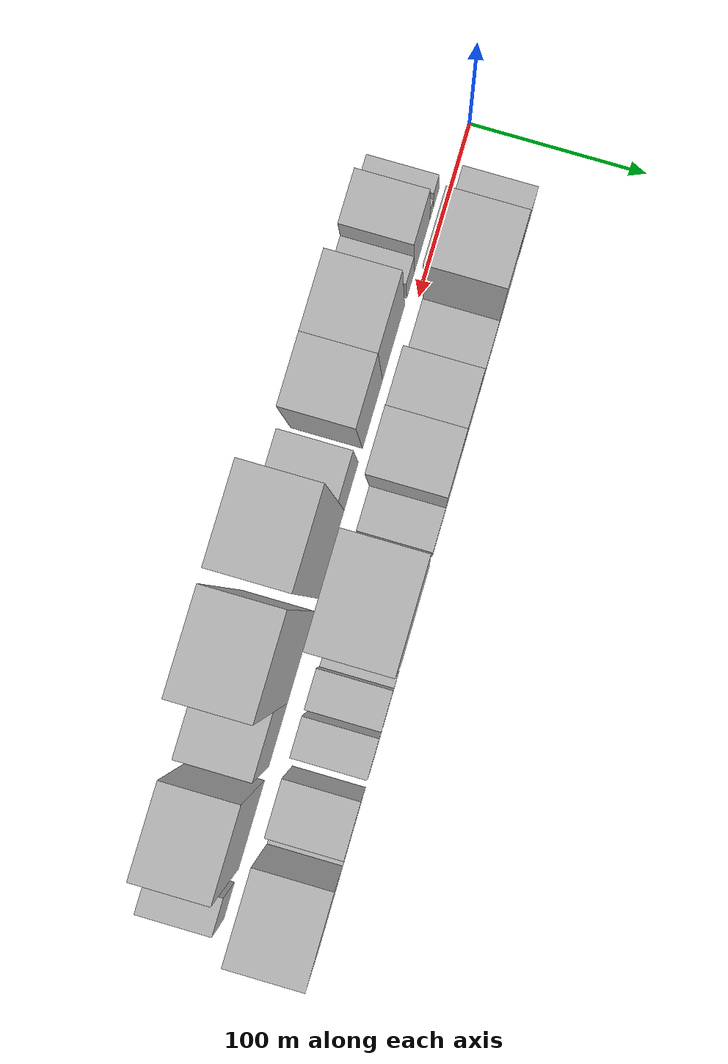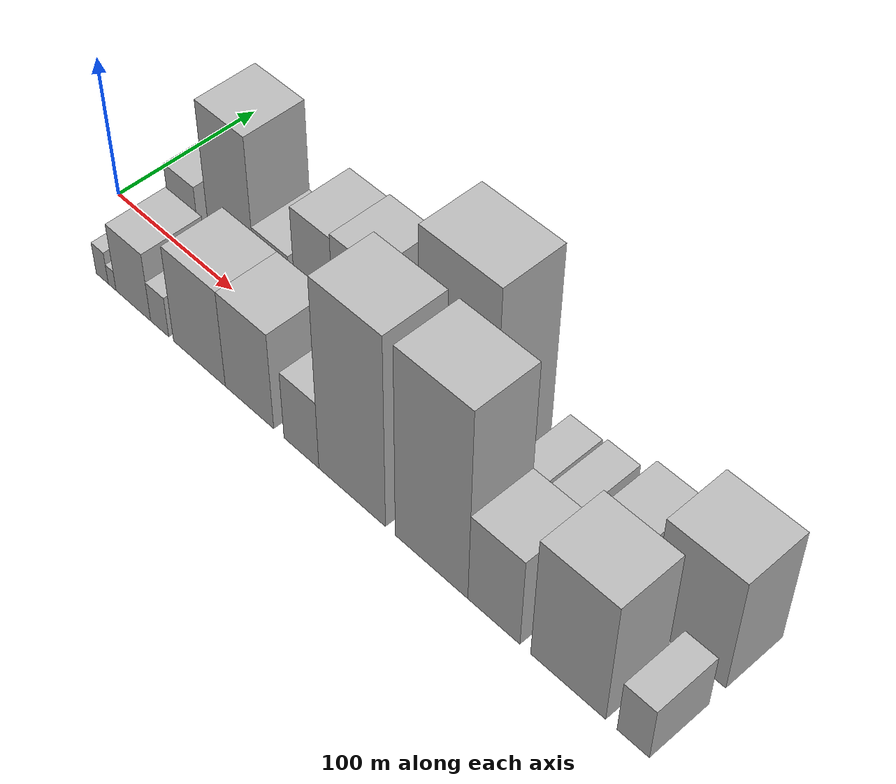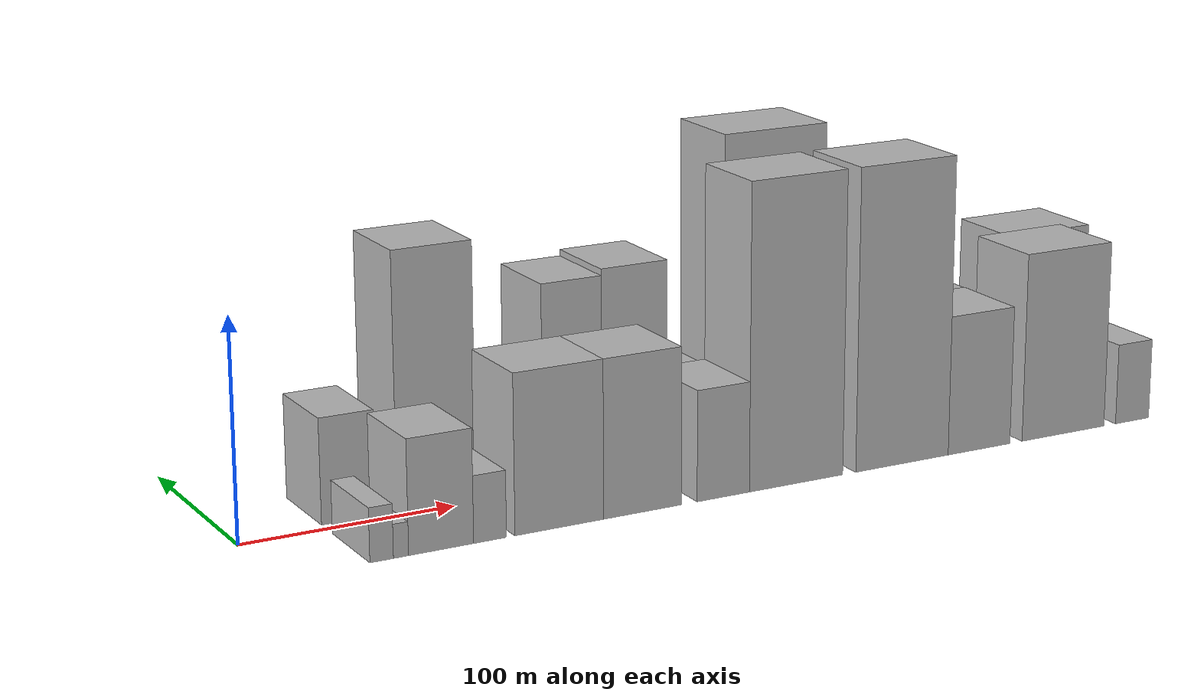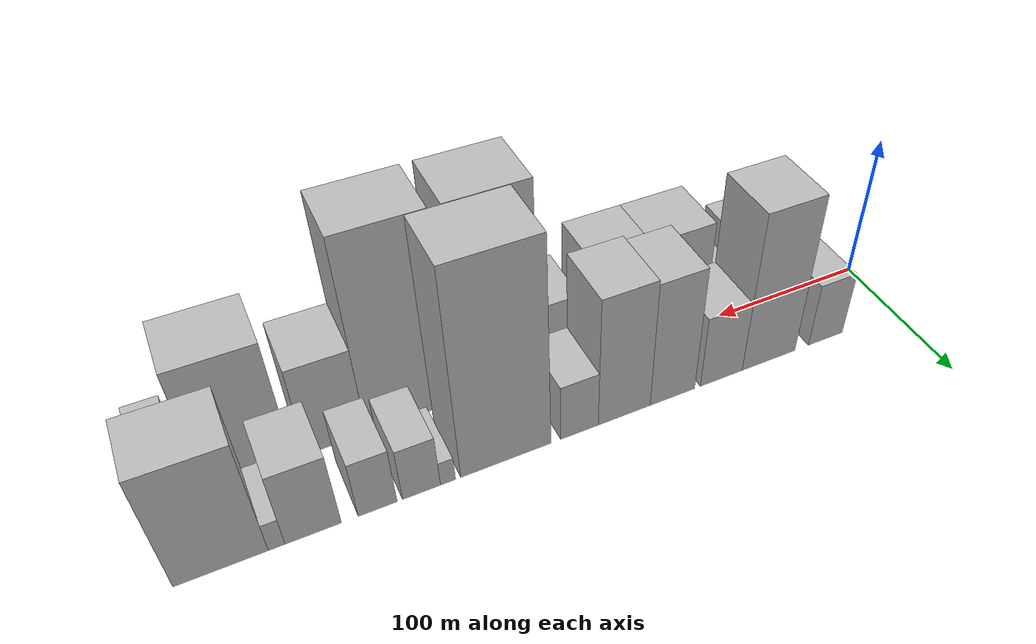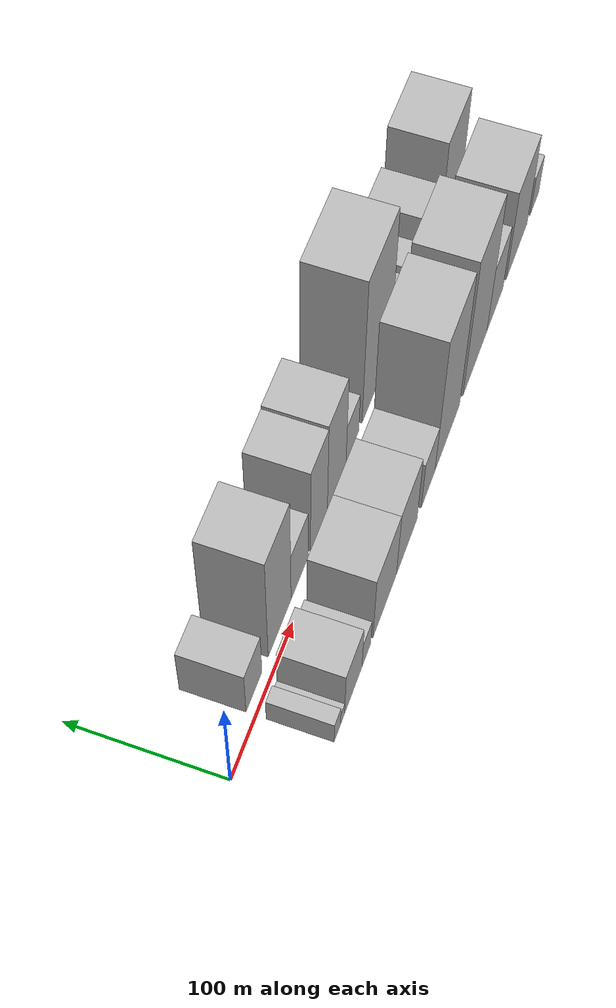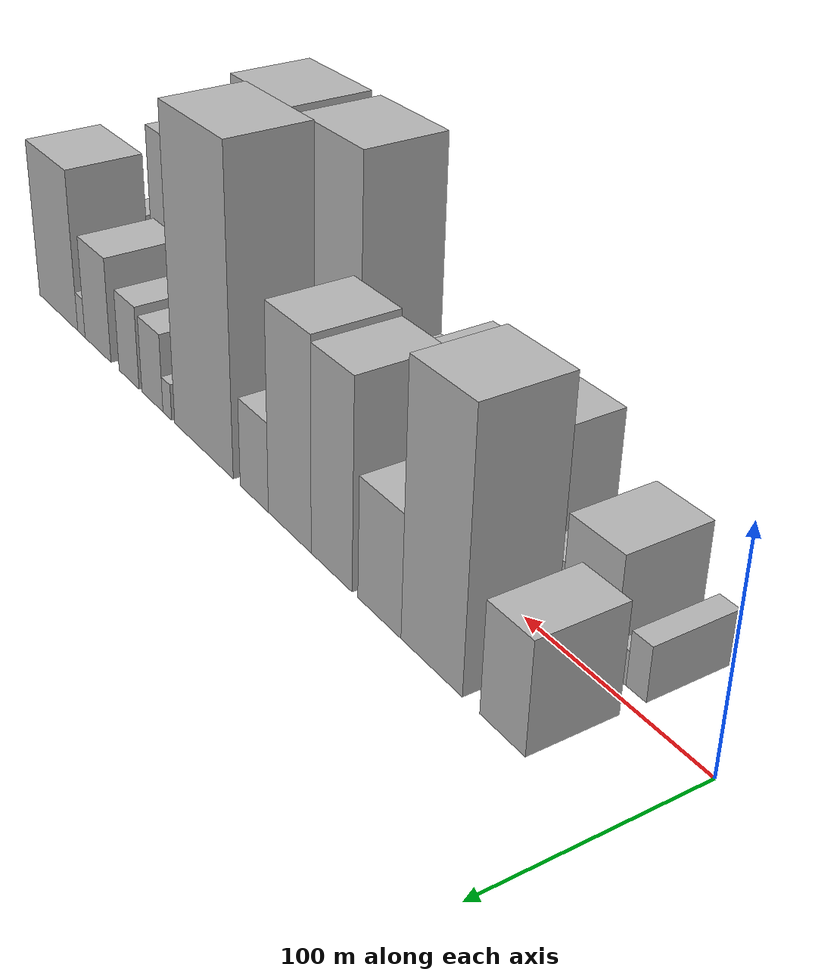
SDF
<sdf version="1.6">
 <world name="default">
  <scene>
   <sky><clouds><speed>12</speed></clouds></sky>
   <ambient>0.4 0.4 0.4 1</ambient>
   <background>0.7 0.7 0.7 1</background>
   <shadows>1</shadows>
  </scene>
  <gravity>0 0 -9.8066</gravity>
  <magnetic_field>6e-06 2.3e-05 -4.2e-05</magnetic_field>
  <physics default="0" name="default_physics" type="ode">
   <ode>
    <solver>
     <type>quick</type>
     <iters>10</iters>
     <sor>1.0</sor>
     <use_dynamic_moi_rescaling>0</use_dynamic_moi_rescaling>
    </solver>
    <constraints>
     <cfm>0</cfm>
     <erp>0.2</erp>
     <contact_max_correcting_vel>100</contact_max_correcting_vel>
     <contact_surface_layer>0.001</contact_surface_layer>
    </constraints>
   </ode>
   <max_step_size>0.004</max_step_size>
   <real_time_factor>1</real_time_factor>
   <real_time_update_rate>250</real_time_update_rate>
  </physics>
  <light name="sun" type="directional">
   <pose>0 0 10 0 0 0</pose>
   <diffuse>0.8 0.8 0.8 1</diffuse>
   <specular>0.2 0.2 0.2 1</specular>
   <attenuation>
    <range>1000</range>
    <constant>0.9</constant>
    <linear>0.01</linear>
    <quadratic>0.001</quadratic>
   </attenuation>
   <direction>-0.5 0.1 -0.9</direction>
  </light>
  <model name="building_1">
   <static>1</static>
   <pose>52.6195 26.0000 0 0.000000 0.000000 1.570796</pose>
   <link name="link">
    <pose>0 0 24.00 0 0 0</pose>
    <collision name="collision"><geometry><box><size>40.0000 25.2391 48.0000</size></box></geometry></collision>
    <visual name="visual">
     <cast_shadows>0</cast_shadows>
     <geometry><box><size>40.0000 25.2391 48.0000</size></box></geometry>
     <material>
      <script>
       <uri>model://HANNAS_wall/materials/scripts</uri>
       <uri>model://HANNAS_wall/materials/textures</uri>
       <name>vrc/HANNAS_wall</name>
      </script>
     </material>
    </visual>
   </link>
  </model>
  <model name="building_2">
   <static>1</static>
   <pose>94.1883 26.0000 0 0.000000 0.000000 1.570796</pose>
   <link name="link">
    <pose>0 0 58.50 0 0 0</pose>
    <collision name="collision"><geometry><box><size>40.0000 37.8985 117.0000</size></box></geometry></collision>
    <visual name="visual">
     <cast_shadows>0</cast_shadows>
     <geometry><box><size>40.0000 37.8985 117.0000</size></box></geometry>
     <material>
      <script>
       <uri>model://HANNAS_wall/materials/scripts</uri>
       <uri>model://HANNAS_wall/materials/textures</uri>
       <name>vrc/HANNAS_wall</name>
      </script>
     </material>
    </visual>
   </link>
  </model>
  <model name="building_3">
   <static>1</static>
   <pose>127.6139 26.0000 0 0.000000 0.000000 1.570796</pose>
   <link name="link">
    <pose>0 0 27.00 0 0 0</pose>
    <collision name="collision"><geometry><box><size>40.0000 28.9527 54.0000</size></box></geometry></collision>
    <visual name="visual">
     <cast_shadows>0</cast_shadows>
     <geometry><box><size>40.0000 28.9527 54.0000</size></box></geometry>
     <material>
      <script>
       <uri>model://HANNAS_wall/materials/scripts</uri>
       <uri>model://HANNAS_wall/materials/textures</uri>
       <name>vrc/HANNAS_wall</name>
      </script>
     </material>
    </visual>
   </link>
  </model>
  <model name="building_4">
   <static>1</static>
   <pose>160.9528 26.0000 0 0.000000 0.000000 1.570796</pose>
   <link name="link">
    <pose>0 0 46.50 0 0 0</pose>
    <collision name="collision"><geometry><box><size>40.0000 29.7250 93.0000</size></box></geometry></collision>
    <visual name="visual">
     <cast_shadows>0</cast_shadows>
     <geometry><box><size>40.0000 29.7250 93.0000</size></box></geometry>
     <material>
      <script>
       <uri>model://HANNAS_wall/materials/scripts</uri>
       <uri>model://HANNAS_wall/materials/textures</uri>
       <name>vrc/HANNAS_wall</name>
      </script>
     </material>
    </visual>
   </link>
  </model>
  <model name="building_5">
   <static>1</static>
   <pose>192.5927 26.0000 0 0.000000 0.000000 1.570796</pose>
   <link name="link">
    <pose>0 0 48.00 0 0 0</pose>
    <collision name="collision"><geometry><box><size>40.0000 33.5550 96.0000</size></box></geometry></collision>
    <visual name="visual">
     <cast_shadows>0</cast_shadows>
     <geometry><box><size>40.0000 33.5550 96.0000</size></box></geometry>
     <material>
      <script>
       <uri>model://HANNAS_wall/materials/scripts</uri>
       <uri>model://HANNAS_wall/materials/textures</uri>
       <name>vrc/HANNAS_wall</name>
      </script>
     </material>
    </visual>
   </link>
  </model>
  <model name="building_6">
   <static>1</static>
   <pose>221.1236 26.0000 0 0.000000 0.000000 1.570796</pose>
   <link name="link">
    <pose>0 0 21.00 0 0 0</pose>
    <collision name="collision"><geometry><box><size>40.0000 23.5068 42.0000</size></box></geometry></collision>
    <visual name="visual">
     <cast_shadows>0</cast_shadows>
     <geometry><box><size>40.0000 23.5068 42.0000</size></box></geometry>
     <material>
      <script>
       <uri>model://HANNAS_wall/materials/scripts</uri>
       <uri>model://HANNAS_wall/materials/textures</uri>
       <name>vrc/HANNAS_wall</name>
      </script>
     </material>
    </visual>
   </link>
  </model>
  <model name="building_7">
   <static>1</static>
   <pose>265.7834 26.0000 0 0.000000 0.000000 1.570796</pose>
   <link name="link">
    <pose>0 0 75.00 0 0 0</pose>
    <collision name="collision"><geometry><box><size>40.0000 53.8128 150.0000</size></box></geometry></collision>
    <visual name="visual">
     <cast_shadows>0</cast_shadows>
     <geometry><box><size>40.0000 53.8128 150.0000</size></box></geometry>
     <material>
      <script>
       <uri>model://HANNAS_wall/materials/scripts</uri>
       <uri>model://HANNAS_wall/materials/textures</uri>
       <name>vrc/HANNAS_wall</name>
      </script>
     </material>
    </visual>
   </link>
  </model>
  <model name="building_8">
   <static>1</static>
   <pose>299.9729 26.0000 0 0.000000 0.000000 1.570796</pose>
   <link name="link">
    <pose>0 0 9.00 0 0 0</pose>
    <collision name="collision"><geometry><box><size>40.0000 8.5662 18.0000</size></box></geometry></collision>
    <visual name="visual">
     <cast_shadows>0</cast_shadows>
     <geometry><box><size>40.0000 8.5662 18.0000</size></box></geometry>
     <material>
      <script>
       <uri>model://HANNAS_wall/materials/scripts</uri>
       <uri>model://HANNAS_wall/materials/textures</uri>
       <name>vrc/HANNAS_wall</name>
      </script>
     </material>
    </visual>
   </link>
  </model>
  <model name="building_9">
   <static>1</static>
   <pose>314.9580 26.0000 0 0.000000 0.000000 1.570796</pose>
   <link name="link">
    <pose>0 0 19.50 0 0 0</pose>
    <collision name="collision"><geometry><box><size>40.0000 21.4040 39.0000</size></box></geometry></collision>
    <visual name="visual">
     <cast_shadows>0</cast_shadows>
     <geometry><box><size>40.0000 21.4040 39.0000</size></box></geometry>
     <material>
      <script>
       <uri>model://HANNAS_wall/materials/scripts</uri>
       <uri>model://HANNAS_wall/materials/textures</uri>
       <name>vrc/HANNAS_wall</name>
      </script>
     </material>
    </visual>
   </link>
  </model>
  <model name="building_10">
   <static>1</static>
   <pose>339.3131 26.0000 0 0.000000 0.000000 1.570796</pose>
   <link name="link">
    <pose>0 0 21.00 0 0 0</pose>
    <collision name="collision"><geometry><box><size>40.0000 21.3061 42.0000</size></box></geometry></collision>
    <visual name="visual">
     <cast_shadows>0</cast_shadows>
     <geometry><box><size>40.0000 21.3061 42.0000</size></box></geometry>
     <material>
      <script>
       <uri>model://HANNAS_wall/materials/scripts</uri>
       <uri>model://HANNAS_wall/materials/textures</uri>
       <name>vrc/HANNAS_wall</name>
      </script>
     </material>
    </visual>
   </link>
  </model>
  <model name="building_11">
   <static>1</static>
   <pose>373.7644 26.0000 0 0.000000 0.000000 1.570796</pose>
   <link name="link">
    <pose>0 0 27.00 0 0 0</pose>
    <collision name="collision"><geometry><box><size>40.0000 29.5966 54.0000</size></box></geometry></collision>
    <visual name="visual">
     <cast_shadows>0</cast_shadows>
     <geometry><box><size>40.0000 29.5966 54.0000</size></box></geometry>
     <material>
      <script>
       <uri>model://HANNAS_wall/materials/scripts</uri>
       <uri>model://HANNAS_wall/materials/textures</uri>
       <name>vrc/HANNAS_wall</name>
      </script>
     </material>
    </visual>
   </link>
  </model>
  <model name="building_12">
   <static>1</static>
   <pose>392.8531 26.0000 0 0.000000 0.000000 1.570796</pose>
   <link name="link">
    <pose>0 0 10.50 0 0 0</pose>
    <collision name="collision"><geometry><box><size>40.0000 8.5809 21.0000</size></box></geometry></collision>
    <visual name="visual">
     <cast_shadows>0</cast_shadows>
     <geometry><box><size>40.0000 8.5809 21.0000</size></box></geometry>
     <material>
      <script>
       <uri>model://HANNAS_wall/materials/scripts</uri>
       <uri>model://HANNAS_wall/materials/textures</uri>
       <name>vrc/HANNAS_wall</name>
      </script>
     </material>
    </visual>
   </link>
  </model>
  <model name="building_13">
   <static>1</static>
   <pose>420.7627 26.0000 0 0.000000 0.000000 1.570796</pose>
   <link name="link">
    <pose>0 0 42.00 0 0 0</pose>
    <collision name="collision"><geometry><box><size>40.0000 47.2383 84.0000</size></box></geometry></collision>
    <visual name="visual">
     <cast_shadows>0</cast_shadows>
     <geometry><box><size>40.0000 47.2383 84.0000</size></box></geometry>
     <material>
      <script>
       <uri>model://HANNAS_wall/materials/scripts</uri>
       <uri>model://HANNAS_wall/materials/textures</uri>
       <name>vrc/HANNAS_wall</name>
      </script>
     </material>
    </visual>
   </link>
  </model>
  <model name="building_14">
   <static>1</static>
   <pose>45.2991 -26.0000 0 0.000000 0.000000 1.570796</pose>
   <link name="link">
    <pose>0 0 12.00 0 0 0</pose>
    <collision name="collision"><geometry><box><size>40.0000 10.5982 24.0000</size></box></geometry></collision>
    <visual name="visual">
     <cast_shadows>0</cast_shadows>
     <geometry><box><size>40.0000 10.5982 24.0000</size></box></geometry>
     <material>
      <script>
       <uri>model://HANNAS_wall/materials/scripts</uri>
       <uri>model://HANNAS_wall/materials/textures</uri>
       <name>vrc/HANNAS_wall</name>
      </script>
     </material>
    </visual>
   </link>
  </model>
  <model name="building_15">
   <static>1</static>
   <pose>54.0402 -26.0000 0 0.000000 0.000000 1.570796</pose>
   <link name="link">
    <pose>0 0 7.50 0 0 0</pose>
    <collision name="collision"><geometry><box><size>40.0000 6.8842 15.0000</size></box></geometry></collision>
    <visual name="visual">
     <cast_shadows>0</cast_shadows>
     <geometry><box><size>40.0000 6.8842 15.0000</size></box></geometry>
     <material>
      <script>
       <uri>model://HANNAS_wall/materials/scripts</uri>
       <uri>model://HANNAS_wall/materials/textures</uri>
       <name>vrc/HANNAS_wall</name>
      </script>
     </material>
    </visual>
   </link>
  </model>
  <model name="building_16">
   <static>1</static>
   <pose>72.4030 -26.0000 0 0.000000 0.000000 1.570796</pose>
   <link name="link">
    <pose>0 0 25.50 0 0 0</pose>
    <collision name="collision"><geometry><box><size>40.0000 29.8413 51.0000</size></box></geometry></collision>
    <visual name="visual">
     <cast_shadows>0</cast_shadows>
     <geometry><box><size>40.0000 29.8413 51.0000</size></box></geometry>
     <material>
      <script>
       <uri>model://HANNAS_wall/materials/scripts</uri>
       <uri>model://HANNAS_wall/materials/textures</uri>
       <name>vrc/HANNAS_wall</name>
      </script>
     </material>
    </visual>
   </link>
  </model>
  <model name="building_17">
   <static>1</static>
   <pose>94.9716 -26.0000 0 0.000000 0.000000 1.570796</pose>
   <link name="link">
    <pose>0 0 15.00 0 0 0</pose>
    <collision name="collision"><geometry><box><size>40.0000 15.2959 30.0000</size></box></geometry></collision>
    <visual name="visual">
     <cast_shadows>0</cast_shadows>
     <geometry><box><size>40.0000 15.2959 30.0000</size></box></geometry>
     <material>
      <script>
       <uri>model://HANNAS_wall/materials/scripts</uri>
       <uri>model://HANNAS_wall/materials/textures</uri>
       <name>vrc/HANNAS_wall</name>
      </script>
     </material>
    </visual>
   </link>
  </model>
  <model name="building_18">
   <static>1</static>
   <pose>127.9093 -26.0000 0 0.000000 0.000000 1.570796</pose>
   <link name="link">
    <pose>0 0 36.00 0 0 0</pose>
    <collision name="collision"><geometry><box><size>40.0000 42.5796 72.0000</size></box></geometry></collision>
    <visual name="visual">
     <cast_shadows>0</cast_shadows>
     <geometry><box><size>40.0000 42.5796 72.0000</size></box></geometry>
     <material>
      <script>
       <uri>model://HANNAS_wall/materials/scripts</uri>
       <uri>model://HANNAS_wall/materials/textures</uri>
       <name>vrc/HANNAS_wall</name>
      </script>
     </material>
    </visual>
   </link>
  </model>
  <model name="building_19">
   <static>1</static>
   <pose>168.3287 -26.0000 0 0.000000 0.000000 1.570796</pose>
   <link name="link">
    <pose>0 0 36.00 0 0 0</pose>
    <collision name="collision"><geometry><box><size>40.0000 38.2591 72.0000</size></box></geometry></collision>
    <visual name="visual">
     <cast_shadows>0</cast_shadows>
     <geometry><box><size>40.0000 38.2591 72.0000</size></box></geometry>
     <material>
      <script>
       <uri>model://HANNAS_wall/materials/scripts</uri>
       <uri>model://HANNAS_wall/materials/textures</uri>
       <name>vrc/HANNAS_wall</name>
      </script>
     </material>
    </visual>
   </link>
  </model>
  <model name="building_20">
   <static>1</static>
   <pose>208.7578 -26.0000 0 0.000000 0.000000 1.570796</pose>
   <link name="link">
    <pose>0 0 25.50 0 0 0</pose>
    <collision name="collision"><geometry><box><size>40.0000 26.5992 51.0000</size></box></geometry></collision>
    <visual name="visual">
     <cast_shadows>0</cast_shadows>
     <geometry><box><size>40.0000 26.5992 51.0000</size></box></geometry>
     <material>
      <script>
       <uri>model://HANNAS_wall/materials/scripts</uri>
       <uri>model://HANNAS_wall/materials/textures</uri>
       <name>vrc/HANNAS_wall</name>
      </script>
     </material>
    </visual>
   </link>
  </model>
  <model name="building_21">
   <static>1</static>
   <pose>246.5236 -26.0000 0 0.000000 0.000000 1.570796</pose>
   <link name="link">
    <pose>0 0 70.50 0 0 0</pose>
    <collision name="collision"><geometry><box><size>40.0000 48.9324 141.0000</size></box></geometry></collision>
    <visual name="visual">
     <cast_shadows>0</cast_shadows>
     <geometry><box><size>40.0000 48.9324 141.0000</size></box></geometry>
     <material>
      <script>
       <uri>model://HANNAS_wall/materials/scripts</uri>
       <uri>model://HANNAS_wall/materials/textures</uri>
       <name>vrc/HANNAS_wall</name>
      </script>
     </material>
    </visual>
   </link>
  </model>
  <model name="building_22">
   <static>1</static>
   <pose>303.2490 -26.0000 0 0.000000 0.000000 1.570796</pose>
   <link name="link">
    <pose>0 0 70.50 0 0 0</pose>
    <collision name="collision"><geometry><box><size>40.0000 50.5183 141.0000</size></box></geometry></collision>
    <visual name="visual">
     <cast_shadows>0</cast_shadows>
     <geometry><box><size>40.0000 50.5183 141.0000</size></box></geometry>
     <material>
      <script>
       <uri>model://HANNAS_wall/materials/scripts</uri>
       <uri>model://HANNAS_wall/materials/textures</uri>
       <name>vrc/HANNAS_wall</name>
      </script>
     </material>
    </visual>
   </link>
  </model>
  <model name="building_23">
   <static>1</static>
   <pose>345.8810 -26.0000 0 0.000000 0.000000 1.570796</pose>
   <link name="link">
    <pose>0 0 33.00 0 0 0</pose>
    <collision name="collision"><geometry><box><size>40.0000 34.7458 66.0000</size></box></geometry></collision>
    <visual name="visual">
     <cast_shadows>0</cast_shadows>
     <geometry><box><size>40.0000 34.7458 66.0000</size></box></geometry>
     <material>
      <script>
       <uri>model://HANNAS_wall/materials/scripts</uri>
       <uri>model://HANNAS_wall/materials/textures</uri>
       <name>vrc/HANNAS_wall</name>
      </script>
     </material>
    </visual>
   </link>
  </model>
  <model name="building_24">
   <static>1</static>
   <pose>394.0864 -26.0000 0 0.000000 0.000000 1.570796</pose>
   <link name="link">
    <pose>0 0 45.00 0 0 0</pose>
    <collision name="collision"><geometry><box><size>40.0000 47.6649 90.0000</size></box></geometry></collision>
    <visual name="visual">
     <cast_shadows>0</cast_shadows>
     <geometry><box><size>40.0000 47.6649 90.0000</size></box></geometry>
     <material>
      <script>
       <uri>model://HANNAS_wall/materials/scripts</uri>
       <uri>model://HANNAS_wall/materials/textures</uri>
       <name>vrc/HANNAS_wall</name>
      </script>
     </material>
    </visual>
   </link>
  </model>
  <model name="building_25">
   <static>1</static>
   <pose>434.8067 -26.0000 0 0.000000 0.000000 1.570796</pose>
   <link name="link">
    <pose>0 0 19.50 0 0 0</pose>
    <collision name="collision"><geometry><box><size>40.0000 19.7757 39.0000</size></box></geometry></collision>
    <visual name="visual">
     <cast_shadows>0</cast_shadows>
     <geometry><box><size>40.0000 19.7757 39.0000</size></box></geometry>
     <material>
      <script>
       <uri>model://HANNAS_wall/materials/scripts</uri>
       <uri>model://HANNAS_wall/materials/textures</uri>
       <name>vrc/HANNAS_wall</name>
      </script>
     </material>
    </visual>
   </link>
  </model>
 </world>
</sdf>
